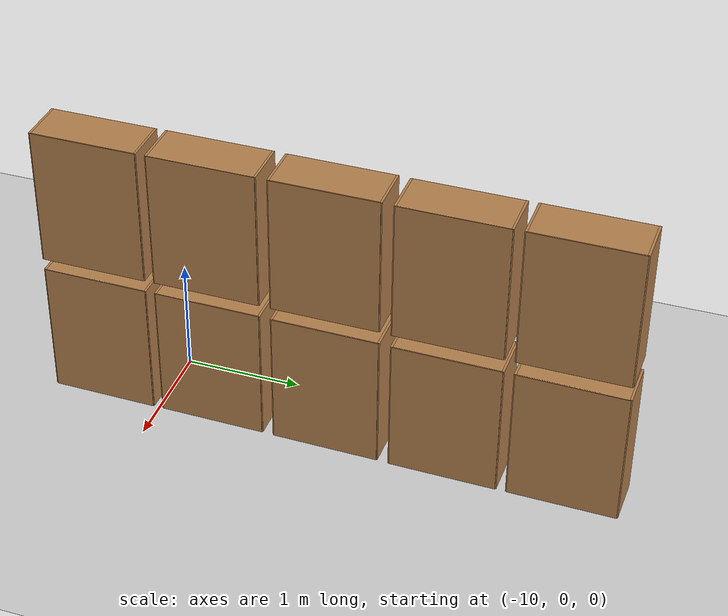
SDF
<sdf version="1.6">
 <world name="default">
  <model name="ground_plane">
   <static>1</static>
   <link name="link">
    <collision name="collision">
     <geometry><plane><normal>0 0 1</normal><size>100 100</size></plane></geometry>
     <surface>
      <contact><collide_bitmask>65535</collide_bitmask></contact>
      <friction><ode><mu>100</mu><mu2>50</mu2></ode></friction>
     </surface>
    </collision>
    <visual name="visual">
     <cast_shadows>0</cast_shadows>
     <geometry><plane><normal>0 0 1</normal><size>100 100</size></plane></geometry>
     <material>
      <script><uri>file://media/materials/scripts/gazebo.material</uri><name>Gazebo/Grey</name></script>
     </material>
    </visual>
   </link>
  </model>
  <model name="bookshelf_13">
   <link name="link">
    <inertial><mass>1</mass></inertial>
    <visual name="visual1">
     <pose>0 0.005 0.6 0 -0 0</pose>
     <geometry><box><size>0.9 0.01 1.2</size></box></geometry>
     <material>
      <script><uri>file://media/materials/scripts/gazebo.material</uri><name>Gazebo/Wood</name></script>
      <shader type="pixel"/>
     </material>
    </visual>
    <visual name="visual2">
     <pose>0.45 -0.195 0.6 0 -0 0</pose>
     <geometry><box><size>0.02 0.4 1.2</size></box></geometry>
     <material>
      <script><uri>file://media/materials/scripts/gazebo.material</uri><name>Gazebo/Wood</name></script>
      <shader type="pixel"/>
     </material>
    </visual>
    <visual name="visual6">
     <pose>0 -0.195 0.43 0 -0 0</pose>
     <geometry><box><size>0.88 0.4 0.02</size></box></geometry>
     <material>
      <script><uri>file://media/materials/scripts/gazebo.material</uri><name>Gazebo/Wood</name></script>
      <shader type="pixel"/>
     </material>
    </visual>
    <visual name="visual5">
     <pose>0 -0.195 1.19 0 -0 0</pose>
     <geometry><box><size>0.88 0.4 0.02</size></box></geometry>
     <material>
      <script><uri>file://media/materials/scripts/gazebo.material</uri><name>Gazebo/Wood</name></script>
      <shader type="pixel"/>
     </material>
    </visual>
    <visual name="visual7">
     <pose>0 -0.195 0.8 0 -0 0</pose>
     <geometry><box><size>0.88 0.4 0.02</size></box></geometry>
     <material>
      <script><uri>file://media/materials/scripts/gazebo.material</uri><name>Gazebo/Wood</name></script>
      <shader type="pixel"/>
     </material>
    </visual>
    <visual name="visual4">
     <pose>0 -0.195 0.03 0 -0 0</pose>
     <geometry><box><size>0.88 0.4 0.06</size></box></geometry>
     <material>
      <script><uri>file://media/materials/scripts/gazebo.material</uri><name>Gazebo/Wood</name></script>
      <shader type="pixel"/>
     </material>
    </visual>
    <visual name="visual3">
     <pose>-0.45 -0.195 0.6 0 -0 0</pose>
     <geometry><box><size>0.02 0.4 1.2</size></box></geometry>
     <material>
      <script><uri>file://media/materials/scripts/gazebo.material</uri><name>Gazebo/Wood</name></script>
      <shader type="pixel"/>
     </material>
    </visual>
    <collision name="right_side">
     <pose>-0.45 -0.195 0.6 0 -0 0</pose>
     <geometry><box><size>0.02 0.4 1.2</size></box></geometry>
     <surface>
      <friction>
       <ode><mu>1</mu><mu2>1</mu2><fdir1>0 0 0</fdir1><slip1>0</slip1><slip2>0</slip2></ode>
       <torsional>
        <coefficient>1</coefficient>
        <patch_radius>0</patch_radius>
        <surface_radius>0</surface_radius>
        <use_patch_radius>1</use_patch_radius>
        <ode><slip>0</slip></ode>
       </torsional>
      </friction>
      <bounce><restitution_coefficient>0</restitution_coefficient><threshold>1e+06</threshold></bounce>
      <contact>
       <collide_without_contact>0</collide_without_contact>
       <collide_without_contact_bitmask>1</collide_without_contact_bitmask>
       <collide_bitmask>1</collide_bitmask>
       <ode>
        <soft_cfm>0</soft_cfm>
        <soft_erp>0.2</soft_erp>
        <kp>1e+13</kp>
        <kd>1</kd>
        <max_vel>0.01</max_vel>
        <min_depth>0</min_depth>
       </ode>
       <bullet>
        <split_impulse>1</split_impulse>
        <split_impulse_penetration_threshold>-0.01</split_impulse_penetration_threshold>
        <soft_cfm>0</soft_cfm>
        <soft_erp>0.2</soft_erp>
        <kp>1e+13</kp>
        <kd>1</kd>
       </bullet>
      </contact>
     </surface>
    </collision>
    <collision name="left_side">
     <pose>0.45 -0.195 0.6 0 -0 0</pose>
     <geometry><box><size>0.02 0.4 1.2</size></box></geometry>
     <surface>
      <friction>
       <ode><mu>1</mu><mu2>1</mu2><fdir1>0 0 0</fdir1><slip1>0</slip1><slip2>0</slip2></ode>
       <torsional>
        <coefficient>1</coefficient>
        <patch_radius>0</patch_radius>
        <surface_radius>0</surface_radius>
        <use_patch_radius>1</use_patch_radius>
        <ode><slip>0</slip></ode>
       </torsional>
      </friction>
      <bounce><restitution_coefficient>0</restitution_coefficient><threshold>1e+06</threshold></bounce>
      <contact>
       <collide_without_contact>0</collide_without_contact>
       <collide_without_contact_bitmask>1</collide_without_contact_bitmask>
       <collide_bitmask>1</collide_bitmask>
       <ode>
        <soft_cfm>0</soft_cfm>
        <soft_erp>0.2</soft_erp>
        <kp>1e+13</kp>
        <kd>1</kd>
        <max_vel>0.01</max_vel>
        <min_depth>0</min_depth>
       </ode>
       <bullet>
        <split_impulse>1</split_impulse>
        <split_impulse_penetration_threshold>-0.01</split_impulse_penetration_threshold>
        <soft_cfm>0</soft_cfm>
        <soft_erp>0.2</soft_erp>
        <kp>1e+13</kp>
        <kd>1</kd>
       </bullet>
      </contact>
     </surface>
    </collision>
    <collision name="top">
     <pose>0 -0.195 1.19 0 -0 0</pose>
     <geometry><box><size>0.88 0.4 0.02</size></box></geometry>
     <surface>
      <friction>
       <ode><mu>1</mu><mu2>1</mu2><fdir1>0 0 0</fdir1><slip1>0</slip1><slip2>0</slip2></ode>
       <torsional>
        <coefficient>1</coefficient>
        <patch_radius>0</patch_radius>
        <surface_radius>0</surface_radius>
        <use_patch_radius>1</use_patch_radius>
        <ode><slip>0</slip></ode>
       </torsional>
      </friction>
      <bounce><restitution_coefficient>0</restitution_coefficient><threshold>1e+06</threshold></bounce>
      <contact>
       <collide_without_contact>0</collide_without_contact>
       <collide_without_contact_bitmask>1</collide_without_contact_bitmask>
       <collide_bitmask>1</collide_bitmask>
       <ode>
        <soft_cfm>0</soft_cfm>
        <soft_erp>0.2</soft_erp>
        <kp>1e+13</kp>
        <kd>1</kd>
        <max_vel>0.01</max_vel>
        <min_depth>0</min_depth>
       </ode>
       <bullet>
        <split_impulse>1</split_impulse>
        <split_impulse_penetration_threshold>-0.01</split_impulse_penetration_threshold>
        <soft_cfm>0</soft_cfm>
        <soft_erp>0.2</soft_erp>
        <kp>1e+13</kp>
        <kd>1</kd>
       </bullet>
      </contact>
     </surface>
    </collision>
    <collision name="back">
     <pose>0 0.005 0.6 0 -0 0</pose>
     <geometry><box><size>0.9 0.01 1.2</size></box></geometry>
     <surface>
      <friction>
       <ode><mu>1</mu><mu2>1</mu2><fdir1>0 0 0</fdir1><slip1>0</slip1><slip2>0</slip2></ode>
       <torsional>
        <coefficient>1</coefficient>
        <patch_radius>0</patch_radius>
        <surface_radius>0</surface_radius>
        <use_patch_radius>1</use_patch_radius>
        <ode><slip>0</slip></ode>
       </torsional>
      </friction>
      <bounce><restitution_coefficient>0</restitution_coefficient><threshold>1e+06</threshold></bounce>
      <contact>
       <collide_without_contact>0</collide_without_contact>
       <collide_without_contact_bitmask>1</collide_without_contact_bitmask>
       <collide_bitmask>1</collide_bitmask>
       <ode>
        <soft_cfm>0</soft_cfm>
        <soft_erp>0.2</soft_erp>
        <kp>1e+13</kp>
        <kd>1</kd>
        <max_vel>0.01</max_vel>
        <min_depth>0</min_depth>
       </ode>
       <bullet>
        <split_impulse>1</split_impulse>
        <split_impulse_penetration_threshold>-0.01</split_impulse_penetration_threshold>
        <soft_cfm>0</soft_cfm>
        <soft_erp>0.2</soft_erp>
        <kp>1e+13</kp>
        <kd>1</kd>
       </bullet>
      </contact>
     </surface>
    </collision>
    <collision name="bottom">
     <pose>0 -0.195 0.03 0 -0 0</pose>
     <geometry><box><size>0.88 0.4 0.06</size></box></geometry>
     <surface>
      <friction>
       <ode><mu>1</mu><mu2>1</mu2><fdir1>0 0 0</fdir1><slip1>0</slip1><slip2>0</slip2></ode>
       <torsional>
        <coefficient>1</coefficient>
        <patch_radius>0</patch_radius>
        <surface_radius>0</surface_radius>
        <use_patch_radius>1</use_patch_radius>
        <ode><slip>0</slip></ode>
       </torsional>
      </friction>
      <bounce><restitution_coefficient>0</restitution_coefficient><threshold>1e+06</threshold></bounce>
      <contact>
       <collide_without_contact>0</collide_without_contact>
       <collide_without_contact_bitmask>1</collide_without_contact_bitmask>
       <collide_bitmask>1</collide_bitmask>
       <ode>
        <soft_cfm>0</soft_cfm>
        <soft_erp>0.2</soft_erp>
        <kp>1e+13</kp>
        <kd>1</kd>
        <max_vel>0.01</max_vel>
        <min_depth>0</min_depth>
       </ode>
       <bullet>
        <split_impulse>1</split_impulse>
        <split_impulse_penetration_threshold>-0.01</split_impulse_penetration_threshold>
        <soft_cfm>0</soft_cfm>
        <soft_erp>0.2</soft_erp>
        <kp>1e+13</kp>
        <kd>1</kd>
       </bullet>
      </contact>
     </surface>
    </collision>
    <collision name="high_shelf">
     <pose>0 -0.195 0.8 0 -0 0</pose>
     <geometry><box><size>0.88 0.4 0.02</size></box></geometry>
     <surface>
      <friction>
       <ode><mu>1</mu><mu2>1</mu2><fdir1>0 0 0</fdir1><slip1>0</slip1><slip2>0</slip2></ode>
       <torsional>
        <coefficient>1</coefficient>
        <patch_radius>0</patch_radius>
        <surface_radius>0</surface_radius>
        <use_patch_radius>1</use_patch_radius>
        <ode><slip>0</slip></ode>
       </torsional>
      </friction>
      <bounce><restitution_coefficient>0</restitution_coefficient><threshold>1e+06</threshold></bounce>
      <contact>
       <collide_without_contact>0</collide_without_contact>
       <collide_without_contact_bitmask>1</collide_without_contact_bitmask>
       <collide_bitmask>1</collide_bitmask>
       <ode>
        <soft_cfm>0</soft_cfm>
        <soft_erp>0.2</soft_erp>
        <kp>1e+13</kp>
        <kd>1</kd>
        <max_vel>0.01</max_vel>
        <min_depth>0</min_depth>
       </ode>
       <bullet>
        <split_impulse>1</split_impulse>
        <split_impulse_penetration_threshold>-0.01</split_impulse_penetration_threshold>
        <soft_cfm>0</soft_cfm>
        <soft_erp>0.2</soft_erp>
        <kp>1e+13</kp>
        <kd>1</kd>
       </bullet>
      </contact>
     </surface>
    </collision>
    <collision name="low_shelf">
     <pose>0 -0.195 0.43 0 -0 0</pose>
     <geometry><box><size>0.88 0.4 0.02</size></box></geometry>
     <surface>
      <friction>
       <ode><mu>1</mu><mu2>1</mu2><fdir1>0 0 0</fdir1><slip1>0</slip1><slip2>0</slip2></ode>
       <torsional>
        <coefficient>1</coefficient>
        <patch_radius>0</patch_radius>
        <surface_radius>0</surface_radius>
        <use_patch_radius>1</use_patch_radius>
        <ode><slip>0</slip></ode>
       </torsional>
      </friction>
      <bounce><restitution_coefficient>0</restitution_coefficient><threshold>1e+06</threshold></bounce>
      <contact>
       <collide_without_contact>0</collide_without_contact>
       <collide_without_contact_bitmask>1</collide_without_contact_bitmask>
       <collide_bitmask>1</collide_bitmask>
       <ode>
        <soft_cfm>0</soft_cfm>
        <soft_erp>0.2</soft_erp>
        <kp>1e+13</kp>
        <kd>1</kd>
        <max_vel>0.01</max_vel>
        <min_depth>0</min_depth>
       </ode>
       <bullet>
        <split_impulse>1</split_impulse>
        <split_impulse_penetration_threshold>-0.01</split_impulse_penetration_threshold>
        <soft_cfm>0</soft_cfm>
        <soft_erp>0.2</soft_erp>
        <kp>1e+13</kp>
        <kd>1</kd>
       </bullet>
      </contact>
     </surface>
    </collision>
   </link>
   <model name="bookshelf">
    <static>1</static>
    <link name="link">
     <inertial><mass>1</mass></inertial>
     <collision name="back">
      <pose>0 0.005 0.6 0 -0 0</pose>
      <geometry><box><size>0.9 0.01 1.2</size></box></geometry>
     </collision>
     <visual name="visual1">
      <pose>0 0.005 0.6 0 -0 0</pose>
      <geometry><box><size>0.9 0.01 1.2</size></box></geometry>
      <material>
       <script><uri>file://media/materials/scripts/gazebo.material</uri><name>Gazebo/Wood</name></script>
      </material>
     </visual>
     <collision name="left_side">
      <pose>0.45 -0.195 0.6 0 -0 0</pose>
      <geometry><box><size>0.02 0.4 1.2</size></box></geometry>
     </collision>
     <visual name="visual2">
      <pose>0.45 -0.195 0.6 0 -0 0</pose>
      <geometry><box><size>0.02 0.4 1.2</size></box></geometry>
      <material>
       <script><uri>file://media/materials/scripts/gazebo.material</uri><name>Gazebo/Wood</name></script>
      </material>
     </visual>
     <collision name="right_side">
      <pose>-0.45 -0.195 0.6 0 -0 0</pose>
      <geometry><box><size>0.02 0.4 1.2</size></box></geometry>
     </collision>
     <visual name="visual3">
      <pose>-0.45 -0.195 0.6 0 -0 0</pose>
      <geometry><box><size>0.02 0.4 1.2</size></box></geometry>
      <material>
       <script><uri>file://media/materials/scripts/gazebo.material</uri><name>Gazebo/Wood</name></script>
      </material>
     </visual>
     <collision name="bottom">
      <pose>0 -0.195 0.03 0 -0 0</pose>
      <geometry><box><size>0.88 0.4 0.06</size></box></geometry>
     </collision>
     <visual name="visual4">
      <pose>0 -0.195 0.03 0 -0 0</pose>
      <geometry><box><size>0.88 0.4 0.06</size></box></geometry>
      <material>
       <script><uri>file://media/materials/scripts/gazebo.material</uri><name>Gazebo/Wood</name></script>
      </material>
     </visual>
     <collision name="top">
      <pose>0 -0.195 1.19 0 -0 0</pose>
      <geometry><box><size>0.88 0.4 0.02</size></box></geometry>
     </collision>
     <visual name="visual5">
      <pose>0 -0.195 1.19 0 -0 0</pose>
      <geometry><box><size>0.88 0.4 0.02</size></box></geometry>
      <material>
       <script><uri>file://media/materials/scripts/gazebo.material</uri><name>Gazebo/Wood</name></script>
      </material>
     </visual>
     <collision name="low_shelf">
      <pose>0 -0.195 0.43 0 -0 0</pose>
      <geometry><box><size>0.88 0.4 0.02</size></box></geometry>
     </collision>
     <visual name="visual6">
      <pose>0 -0.195 0.43 0 -0 0</pose>
      <geometry><box><size>0.88 0.4 0.02</size></box></geometry>
      <material>
       <script><uri>file://media/materials/scripts/gazebo.material</uri><name>Gazebo/Wood</name></script>
      </material>
     </visual>
     <collision name="high_shelf">
      <pose>0 -0.195 0.8 0 -0 0</pose>
      <geometry><box><size>0.88 0.4 0.02</size></box></geometry>
     </collision>
     <visual name="visual7">
      <pose>0 -0.195 0.8 0 -0 0</pose>
      <geometry><box><size>0.88 0.4 0.02</size></box></geometry>
      <material>
       <script><uri>file://media/materials/scripts/gazebo.material</uri><name>Gazebo/Wood</name></script>
      </material>
     </visual>
    </link>
    <pose>0.995227 0.001782 0 0 -0 0</pose>
   </model>
   <model name="bookshelf_0">
    <static>1</static>
    <link name="link">
     <inertial><mass>1</mass></inertial>
     <collision name="back">
      <pose>0 0.005 0.6 0 -0 0</pose>
      <geometry><box><size>0.9 0.01 1.2</size></box></geometry>
     </collision>
     <visual name="visual1">
      <pose>0 0.005 0.6 0 -0 0</pose>
      <geometry><box><size>0.9 0.01 1.2</size></box></geometry>
      <material>
       <script><uri>file://media/materials/scripts/gazebo.material</uri><name>Gazebo/Wood</name></script>
      </material>
     </visual>
     <collision name="left_side">
      <pose>0.45 -0.195 0.6 0 -0 0</pose>
      <geometry><box><size>0.02 0.4 1.2</size></box></geometry>
     </collision>
     <visual name="visual2">
      <pose>0.45 -0.195 0.6 0 -0 0</pose>
      <geometry><box><size>0.02 0.4 1.2</size></box></geometry>
      <material>
       <script><uri>file://media/materials/scripts/gazebo.material</uri><name>Gazebo/Wood</name></script>
      </material>
     </visual>
     <collision name="right_side">
      <pose>-0.45 -0.195 0.6 0 -0 0</pose>
      <geometry><box><size>0.02 0.4 1.2</size></box></geometry>
     </collision>
     <visual name="visual3">
      <pose>-0.45 -0.195 0.6 0 -0 0</pose>
      <geometry><box><size>0.02 0.4 1.2</size></box></geometry>
      <material>
       <script><uri>file://media/materials/scripts/gazebo.material</uri><name>Gazebo/Wood</name></script>
      </material>
     </visual>
     <collision name="bottom">
      <pose>0 -0.195 0.03 0 -0 0</pose>
      <geometry><box><size>0.88 0.4 0.06</size></box></geometry>
     </collision>
     <visual name="visual4">
      <pose>0 -0.195 0.03 0 -0 0</pose>
      <geometry><box><size>0.88 0.4 0.06</size></box></geometry>
      <material>
       <script><uri>file://media/materials/scripts/gazebo.material</uri><name>Gazebo/Wood</name></script>
      </material>
     </visual>
     <collision name="top">
      <pose>0 -0.195 1.19 0 -0 0</pose>
      <geometry><box><size>0.88 0.4 0.02</size></box></geometry>
     </collision>
     <visual name="visual5">
      <pose>0 -0.195 1.19 0 -0 0</pose>
      <geometry><box><size>0.88 0.4 0.02</size></box></geometry>
      <material>
       <script><uri>file://media/materials/scripts/gazebo.material</uri><name>Gazebo/Wood</name></script>
      </material>
     </visual>
     <collision name="low_shelf">
      <pose>0 -0.195 0.43 0 -0 0</pose>
      <geometry><box><size>0.88 0.4 0.02</size></box></geometry>
     </collision>
     <visual name="visual6">
      <pose>0 -0.195 0.43 0 -0 0</pose>
      <geometry><box><size>0.88 0.4 0.02</size></box></geometry>
      <material>
       <script><uri>file://media/materials/scripts/gazebo.material</uri><name>Gazebo/Wood</name></script>
      </material>
     </visual>
     <collision name="high_shelf">
      <pose>0 -0.195 0.8 0 -0 0</pose>
      <geometry><box><size>0.88 0.4 0.02</size></box></geometry>
     </collision>
     <visual name="visual7">
      <pose>0 -0.195 0.8 0 -0 0</pose>
      <geometry><box><size>0.88 0.4 0.02</size></box></geometry>
      <material>
       <script><uri>file://media/materials/scripts/gazebo.material</uri><name>Gazebo/Wood</name></script>
      </material>
     </visual>
    </link>
    <pose>2.00556 -0.004623 0 0 -0 0</pose>
   </model>
   <model name="bookshelf_1">
    <static>1</static>
    <link name="link">
     <inertial><mass>1</mass></inertial>
     <collision name="back">
      <pose>0 0.005 0.6 0 -0 0</pose>
      <geometry><box><size>0.9 0.01 1.2</size></box></geometry>
     </collision>
     <visual name="visual1">
      <pose>0 0.005 0.6 0 -0 0</pose>
      <geometry><box><size>0.9 0.01 1.2</size></box></geometry>
      <material>
       <script><uri>file://media/materials/scripts/gazebo.material</uri><name>Gazebo/Wood</name></script>
      </material>
     </visual>
     <collision name="left_side">
      <pose>0.45 -0.195 0.6 0 -0 0</pose>
      <geometry><box><size>0.02 0.4 1.2</size></box></geometry>
     </collision>
     <visual name="visual2">
      <pose>0.45 -0.195 0.6 0 -0 0</pose>
      <geometry><box><size>0.02 0.4 1.2</size></box></geometry>
      <material>
       <script><uri>file://media/materials/scripts/gazebo.material</uri><name>Gazebo/Wood</name></script>
      </material>
     </visual>
     <collision name="right_side">
      <pose>-0.45 -0.195 0.6 0 -0 0</pose>
      <geometry><box><size>0.02 0.4 1.2</size></box></geometry>
     </collision>
     <visual name="visual3">
      <pose>-0.45 -0.195 0.6 0 -0 0</pose>
      <geometry><box><size>0.02 0.4 1.2</size></box></geometry>
      <material>
       <script><uri>file://media/materials/scripts/gazebo.material</uri><name>Gazebo/Wood</name></script>
      </material>
     </visual>
     <collision name="bottom">
      <pose>0 -0.195 0.03 0 -0 0</pose>
      <geometry><box><size>0.88 0.4 0.06</size></box></geometry>
     </collision>
     <visual name="visual4">
      <pose>0 -0.195 0.03 0 -0 0</pose>
      <geometry><box><size>0.88 0.4 0.06</size></box></geometry>
      <material>
       <script><uri>file://media/materials/scripts/gazebo.material</uri><name>Gazebo/Wood</name></script>
      </material>
     </visual>
     <collision name="top">
      <pose>0 -0.195 1.19 0 -0 0</pose>
      <geometry><box><size>0.88 0.4 0.02</size></box></geometry>
     </collision>
     <visual name="visual5">
      <pose>0 -0.195 1.19 0 -0 0</pose>
      <geometry><box><size>0.88 0.4 0.02</size></box></geometry>
      <material>
       <script><uri>file://media/materials/scripts/gazebo.material</uri><name>Gazebo/Wood</name></script>
      </material>
     </visual>
     <collision name="low_shelf">
      <pose>0 -0.195 0.43 0 -0 0</pose>
      <geometry><box><size>0.88 0.4 0.02</size></box></geometry>
     </collision>
     <visual name="visual6">
      <pose>0 -0.195 0.43 0 -0 0</pose>
      <geometry><box><size>0.88 0.4 0.02</size></box></geometry>
      <material>
       <script><uri>file://media/materials/scripts/gazebo.material</uri><name>Gazebo/Wood</name></script>
      </material>
     </visual>
     <collision name="high_shelf">
      <pose>0 -0.195 0.8 0 -0 0</pose>
      <geometry><box><size>0.88 0.4 0.02</size></box></geometry>
     </collision>
     <visual name="visual7">
      <pose>0 -0.195 0.8 0 -0 0</pose>
      <geometry><box><size>0.88 0.4 0.02</size></box></geometry>
      <material>
       <script><uri>file://media/materials/scripts/gazebo.material</uri><name>Gazebo/Wood</name></script>
      </material>
     </visual>
    </link>
    <pose>3.01465 -0.007637 0 0 -0 0</pose>
   </model>
   <model name="bookshelf_2">
    <static>1</static>
    <link name="link">
     <inertial><mass>1</mass></inertial>
     <collision name="back">
      <pose>0 0.005 0.6 0 -0 0</pose>
      <geometry><box><size>0.9 0.01 1.2</size></box></geometry>
     </collision>
     <visual name="visual1">
      <pose>0 0.005 0.6 0 -0 0</pose>
      <geometry><box><size>0.9 0.01 1.2</size></box></geometry>
      <material>
       <script><uri>file://media/materials/scripts/gazebo.material</uri><name>Gazebo/Wood</name></script>
      </material>
     </visual>
     <collision name="left_side">
      <pose>0.45 -0.195 0.6 0 -0 0</pose>
      <geometry><box><size>0.02 0.4 1.2</size></box></geometry>
     </collision>
     <visual name="visual2">
      <pose>0.45 -0.195 0.6 0 -0 0</pose>
      <geometry><box><size>0.02 0.4 1.2</size></box></geometry>
      <material>
       <script><uri>file://media/materials/scripts/gazebo.material</uri><name>Gazebo/Wood</name></script>
      </material>
     </visual>
     <collision name="right_side">
      <pose>-0.45 -0.195 0.6 0 -0 0</pose>
      <geometry><box><size>0.02 0.4 1.2</size></box></geometry>
     </collision>
     <visual name="visual3">
      <pose>-0.45 -0.195 0.6 0 -0 0</pose>
      <geometry><box><size>0.02 0.4 1.2</size></box></geometry>
      <material>
       <script><uri>file://media/materials/scripts/gazebo.material</uri><name>Gazebo/Wood</name></script>
      </material>
     </visual>
     <collision name="bottom">
      <pose>0 -0.195 0.03 0 -0 0</pose>
      <geometry><box><size>0.88 0.4 0.06</size></box></geometry>
     </collision>
     <visual name="visual4">
      <pose>0 -0.195 0.03 0 -0 0</pose>
      <geometry><box><size>0.88 0.4 0.06</size></box></geometry>
      <material>
       <script><uri>file://media/materials/scripts/gazebo.material</uri><name>Gazebo/Wood</name></script>
      </material>
     </visual>
     <collision name="top">
      <pose>0 -0.195 1.19 0 -0 0</pose>
      <geometry><box><size>0.88 0.4 0.02</size></box></geometry>
     </collision>
     <visual name="visual5">
      <pose>0 -0.195 1.19 0 -0 0</pose>
      <geometry><box><size>0.88 0.4 0.02</size></box></geometry>
      <material>
       <script><uri>file://media/materials/scripts/gazebo.material</uri><name>Gazebo/Wood</name></script>
      </material>
     </visual>
     <collision name="low_shelf">
      <pose>0 -0.195 0.43 0 -0 0</pose>
      <geometry><box><size>0.88 0.4 0.02</size></box></geometry>
     </collision>
     <visual name="visual6">
      <pose>0 -0.195 0.43 0 -0 0</pose>
      <geometry><box><size>0.88 0.4 0.02</size></box></geometry>
      <material>
       <script><uri>file://media/materials/scripts/gazebo.material</uri><name>Gazebo/Wood</name></script>
      </material>
     </visual>
     <collision name="high_shelf">
      <pose>0 -0.195 0.8 0 -0 0</pose>
      <geometry><box><size>0.88 0.4 0.02</size></box></geometry>
     </collision>
     <visual name="visual7">
      <pose>0 -0.195 0.8 0 -0 0</pose>
      <geometry><box><size>0.88 0.4 0.02</size></box></geometry>
      <material>
       <script><uri>file://media/materials/scripts/gazebo.material</uri><name>Gazebo/Wood</name></script>
      </material>
     </visual>
    </link>
    <pose>4.0064 -0.00407 0 0 -0 0</pose>
   </model>
   <static>1</static>
   <pose>-9.27686 3.49749 0 0 0 -1.58832</pose>
  </model>
  <model name="bookshelf_13_0">
   <link name="link">
    <inertial><mass>1</mass></inertial>
    <visual name="visual1">
     <pose>0 0.005 0.6 0 -0 0</pose>
     <geometry><box><size>0.9 0.01 1.2</size></box></geometry>
     <material>
      <script><uri>file://media/materials/scripts/gazebo.material</uri><name>Gazebo/Wood</name></script>
      <shader type="pixel"/>
     </material>
    </visual>
    <visual name="visual2">
     <pose>0.45 -0.195 0.6 0 -0 0</pose>
     <geometry><box><size>0.02 0.4 1.2</size></box></geometry>
     <material>
      <script><uri>file://media/materials/scripts/gazebo.material</uri><name>Gazebo/Wood</name></script>
      <shader type="pixel"/>
     </material>
    </visual>
    <visual name="visual6">
     <pose>0 -0.195 0.43 0 -0 0</pose>
     <geometry><box><size>0.88 0.4 0.02</size></box></geometry>
     <material>
      <script><uri>file://media/materials/scripts/gazebo.material</uri><name>Gazebo/Wood</name></script>
      <shader type="pixel"/>
     </material>
    </visual>
    <visual name="visual5">
     <pose>0 -0.195 1.19 0 -0 0</pose>
     <geometry><box><size>0.88 0.4 0.02</size></box></geometry>
     <material>
      <script><uri>file://media/materials/scripts/gazebo.material</uri><name>Gazebo/Wood</name></script>
      <shader type="pixel"/>
     </material>
    </visual>
    <visual name="visual7">
     <pose>0 -0.195 0.8 0 -0 0</pose>
     <geometry><box><size>0.88 0.4 0.02</size></box></geometry>
     <material>
      <script><uri>file://media/materials/scripts/gazebo.material</uri><name>Gazebo/Wood</name></script>
      <shader type="pixel"/>
     </material>
    </visual>
    <visual name="visual4">
     <pose>0 -0.195 0.03 0 -0 0</pose>
     <geometry><box><size>0.88 0.4 0.06</size></box></geometry>
     <material>
      <script><uri>file://media/materials/scripts/gazebo.material</uri><name>Gazebo/Wood</name></script>
      <shader type="pixel"/>
     </material>
    </visual>
    <visual name="visual3">
     <pose>-0.45 -0.195 0.6 0 -0 0</pose>
     <geometry><box><size>0.02 0.4 1.2</size></box></geometry>
     <material>
      <script><uri>file://media/materials/scripts/gazebo.material</uri><name>Gazebo/Wood</name></script>
      <shader type="pixel"/>
     </material>
    </visual>
    <collision name="right_side">
     <pose>-0.45 -0.195 0.6 0 -0 0</pose>
     <geometry><box><size>0.02 0.4 1.2</size></box></geometry>
     <surface>
      <friction>
       <ode><mu>1</mu><mu2>1</mu2><fdir1>0 0 0</fdir1><slip1>0</slip1><slip2>0</slip2></ode>
       <torsional>
        <coefficient>1</coefficient>
        <patch_radius>0</patch_radius>
        <surface_radius>0</surface_radius>
        <use_patch_radius>1</use_patch_radius>
        <ode><slip>0</slip></ode>
       </torsional>
      </friction>
      <bounce><restitution_coefficient>0</restitution_coefficient><threshold>1e+06</threshold></bounce>
      <contact>
       <collide_without_contact>0</collide_without_contact>
       <collide_without_contact_bitmask>1</collide_without_contact_bitmask>
       <collide_bitmask>1</collide_bitmask>
       <ode>
        <soft_cfm>0</soft_cfm>
        <soft_erp>0.2</soft_erp>
        <kp>1e+13</kp>
        <kd>1</kd>
        <max_vel>0.01</max_vel>
        <min_depth>0</min_depth>
       </ode>
       <bullet>
        <split_impulse>1</split_impulse>
        <split_impulse_penetration_threshold>-0.01</split_impulse_penetration_threshold>
        <soft_cfm>0</soft_cfm>
        <soft_erp>0.2</soft_erp>
        <kp>1e+13</kp>
        <kd>1</kd>
       </bullet>
      </contact>
     </surface>
    </collision>
    <collision name="left_side">
     <pose>0.45 -0.195 0.6 0 -0 0</pose>
     <geometry><box><size>0.02 0.4 1.2</size></box></geometry>
     <surface>
      <friction>
       <ode><mu>1</mu><mu2>1</mu2><fdir1>0 0 0</fdir1><slip1>0</slip1><slip2>0</slip2></ode>
       <torsional>
        <coefficient>1</coefficient>
        <patch_radius>0</patch_radius>
        <surface_radius>0</surface_radius>
        <use_patch_radius>1</use_patch_radius>
        <ode><slip>0</slip></ode>
       </torsional>
      </friction>
      <bounce><restitution_coefficient>0</restitution_coefficient><threshold>1e+06</threshold></bounce>
      <contact>
       <collide_without_contact>0</collide_without_contact>
       <collide_without_contact_bitmask>1</collide_without_contact_bitmask>
       <collide_bitmask>1</collide_bitmask>
       <ode>
        <soft_cfm>0</soft_cfm>
        <soft_erp>0.2</soft_erp>
        <kp>1e+13</kp>
        <kd>1</kd>
        <max_vel>0.01</max_vel>
        <min_depth>0</min_depth>
       </ode>
       <bullet>
        <split_impulse>1</split_impulse>
        <split_impulse_penetration_threshold>-0.01</split_impulse_penetration_threshold>
        <soft_cfm>0</soft_cfm>
        <soft_erp>0.2</soft_erp>
        <kp>1e+13</kp>
        <kd>1</kd>
       </bullet>
      </contact>
     </surface>
    </collision>
    <collision name="top">
     <pose>0 -0.195 1.19 0 -0 0</pose>
     <geometry><box><size>0.88 0.4 0.02</size></box></geometry>
     <surface>
      <friction>
       <ode><mu>1</mu><mu2>1</mu2><fdir1>0 0 0</fdir1><slip1>0</slip1><slip2>0</slip2></ode>
       <torsional>
        <coefficient>1</coefficient>
        <patch_radius>0</patch_radius>
        <surface_radius>0</surface_radius>
        <use_patch_radius>1</use_patch_radius>
        <ode><slip>0</slip></ode>
       </torsional>
      </friction>
      <bounce><restitution_coefficient>0</restitution_coefficient><threshold>1e+06</threshold></bounce>
      <contact>
       <collide_without_contact>0</collide_without_contact>
       <collide_without_contact_bitmask>1</collide_without_contact_bitmask>
       <collide_bitmask>1</collide_bitmask>
       <ode>
        <soft_cfm>0</soft_cfm>
        <soft_erp>0.2</soft_erp>
        <kp>1e+13</kp>
        <kd>1</kd>
        <max_vel>0.01</max_vel>
        <min_depth>0</min_depth>
       </ode>
       <bullet>
        <split_impulse>1</split_impulse>
        <split_impulse_penetration_threshold>-0.01</split_impulse_penetration_threshold>
        <soft_cfm>0</soft_cfm>
        <soft_erp>0.2</soft_erp>
        <kp>1e+13</kp>
        <kd>1</kd>
       </bullet>
      </contact>
     </surface>
    </collision>
    <collision name="back">
     <pose>0 0.005 0.6 0 -0 0</pose>
     <geometry><box><size>0.9 0.01 1.2</size></box></geometry>
     <surface>
      <friction>
       <ode><mu>1</mu><mu2>1</mu2><fdir1>0 0 0</fdir1><slip1>0</slip1><slip2>0</slip2></ode>
       <torsional>
        <coefficient>1</coefficient>
        <patch_radius>0</patch_radius>
        <surface_radius>0</surface_radius>
        <use_patch_radius>1</use_patch_radius>
        <ode><slip>0</slip></ode>
       </torsional>
      </friction>
      <bounce><restitution_coefficient>0</restitution_coefficient><threshold>1e+06</threshold></bounce>
      <contact>
       <collide_without_contact>0</collide_without_contact>
       <collide_without_contact_bitmask>1</collide_without_contact_bitmask>
       <collide_bitmask>1</collide_bitmask>
       <ode>
        <soft_cfm>0</soft_cfm>
        <soft_erp>0.2</soft_erp>
        <kp>1e+13</kp>
        <kd>1</kd>
        <max_vel>0.01</max_vel>
        <min_depth>0</min_depth>
       </ode>
       <bullet>
        <split_impulse>1</split_impulse>
        <split_impulse_penetration_threshold>-0.01</split_impulse_penetration_threshold>
        <soft_cfm>0</soft_cfm>
        <soft_erp>0.2</soft_erp>
        <kp>1e+13</kp>
        <kd>1</kd>
       </bullet>
      </contact>
     </surface>
    </collision>
    <collision name="bottom">
     <pose>0 -0.195 0.03 0 -0 0</pose>
     <geometry><box><size>0.88 0.4 0.06</size></box></geometry>
     <surface>
      <friction>
       <ode><mu>1</mu><mu2>1</mu2><fdir1>0 0 0</fdir1><slip1>0</slip1><slip2>0</slip2></ode>
       <torsional>
        <coefficient>1</coefficient>
        <patch_radius>0</patch_radius>
        <surface_radius>0</surface_radius>
        <use_patch_radius>1</use_patch_radius>
        <ode><slip>0</slip></ode>
       </torsional>
      </friction>
      <bounce><restitution_coefficient>0</restitution_coefficient><threshold>1e+06</threshold></bounce>
      <contact>
       <collide_without_contact>0</collide_without_contact>
       <collide_without_contact_bitmask>1</collide_without_contact_bitmask>
       <collide_bitmask>1</collide_bitmask>
       <ode>
        <soft_cfm>0</soft_cfm>
        <soft_erp>0.2</soft_erp>
        <kp>1e+13</kp>
        <kd>1</kd>
        <max_vel>0.01</max_vel>
        <min_depth>0</min_depth>
       </ode>
       <bullet>
        <split_impulse>1</split_impulse>
        <split_impulse_penetration_threshold>-0.01</split_impulse_penetration_threshold>
        <soft_cfm>0</soft_cfm>
        <soft_erp>0.2</soft_erp>
        <kp>1e+13</kp>
        <kd>1</kd>
       </bullet>
      </contact>
     </surface>
    </collision>
    <collision name="high_shelf">
     <pose>0 -0.195 0.8 0 -0 0</pose>
     <geometry><box><size>0.88 0.4 0.02</size></box></geometry>
     <surface>
      <friction>
       <ode><mu>1</mu><mu2>1</mu2><fdir1>0 0 0</fdir1><slip1>0</slip1><slip2>0</slip2></ode>
       <torsional>
        <coefficient>1</coefficient>
        <patch_radius>0</patch_radius>
        <surface_radius>0</surface_radius>
        <use_patch_radius>1</use_patch_radius>
        <ode><slip>0</slip></ode>
       </torsional>
      </friction>
      <bounce><restitution_coefficient>0</restitution_coefficient><threshold>1e+06</threshold></bounce>
      <contact>
       <collide_without_contact>0</collide_without_contact>
       <collide_without_contact_bitmask>1</collide_without_contact_bitmask>
       <collide_bitmask>1</collide_bitmask>
       <ode>
        <soft_cfm>0</soft_cfm>
        <soft_erp>0.2</soft_erp>
        <kp>1e+13</kp>
        <kd>1</kd>
        <max_vel>0.01</max_vel>
        <min_depth>0</min_depth>
       </ode>
       <bullet>
        <split_impulse>1</split_impulse>
        <split_impulse_penetration_threshold>-0.01</split_impulse_penetration_threshold>
        <soft_cfm>0</soft_cfm>
        <soft_erp>0.2</soft_erp>
        <kp>1e+13</kp>
        <kd>1</kd>
       </bullet>
      </contact>
     </surface>
    </collision>
    <collision name="low_shelf">
     <pose>0 -0.195 0.43 0 -0 0</pose>
     <geometry><box><size>0.88 0.4 0.02</size></box></geometry>
     <surface>
      <friction>
       <ode><mu>1</mu><mu2>1</mu2><fdir1>0 0 0</fdir1><slip1>0</slip1><slip2>0</slip2></ode>
       <torsional>
        <coefficient>1</coefficient>
        <patch_radius>0</patch_radius>
        <surface_radius>0</surface_radius>
        <use_patch_radius>1</use_patch_radius>
        <ode><slip>0</slip></ode>
       </torsional>
      </friction>
      <bounce><restitution_coefficient>0</restitution_coefficient><threshold>1e+06</threshold></bounce>
      <contact>
       <collide_without_contact>0</collide_without_contact>
       <collide_without_contact_bitmask>1</collide_without_contact_bitmask>
       <collide_bitmask>1</collide_bitmask>
       <ode>
        <soft_cfm>0</soft_cfm>
        <soft_erp>0.2</soft_erp>
        <kp>1e+13</kp>
        <kd>1</kd>
        <max_vel>0.01</max_vel>
        <min_depth>0</min_depth>
       </ode>
       <bullet>
        <split_impulse>1</split_impulse>
        <split_impulse_penetration_threshold>-0.01</split_impulse_penetration_threshold>
        <soft_cfm>0</soft_cfm>
        <soft_erp>0.2</soft_erp>
        <kp>1e+13</kp>
        <kd>1</kd>
       </bullet>
      </contact>
     </surface>
    </collision>
   </link>
   <model name="bookshelf">
    <static>1</static>
    <link name="link">
     <inertial><mass>1</mass></inertial>
     <collision name="back">
      <pose>0 0.005 0.6 0 -0 0</pose>
      <geometry><box><size>0.9 0.01 1.2</size></box></geometry>
     </collision>
     <visual name="visual1">
      <pose>0 0.005 0.6 0 -0 0</pose>
      <geometry><box><size>0.9 0.01 1.2</size></box></geometry>
      <material>
       <script><uri>file://media/materials/scripts/gazebo.material</uri><name>Gazebo/Wood</name></script>
      </material>
     </visual>
     <collision name="left_side">
      <pose>0.45 -0.195 0.6 0 -0 0</pose>
      <geometry><box><size>0.02 0.4 1.2</size></box></geometry>
     </collision>
     <visual name="visual2">
      <pose>0.45 -0.195 0.6 0 -0 0</pose>
      <geometry><box><size>0.02 0.4 1.2</size></box></geometry>
      <material>
       <script><uri>file://media/materials/scripts/gazebo.material</uri><name>Gazebo/Wood</name></script>
      </material>
     </visual>
     <collision name="right_side">
      <pose>-0.45 -0.195 0.6 0 -0 0</pose>
      <geometry><box><size>0.02 0.4 1.2</size></box></geometry>
     </collision>
     <visual name="visual3">
      <pose>-0.45 -0.195 0.6 0 -0 0</pose>
      <geometry><box><size>0.02 0.4 1.2</size></box></geometry>
      <material>
       <script><uri>file://media/materials/scripts/gazebo.material</uri><name>Gazebo/Wood</name></script>
      </material>
     </visual>
     <collision name="bottom">
      <pose>0 -0.195 0.03 0 -0 0</pose>
      <geometry><box><size>0.88 0.4 0.06</size></box></geometry>
     </collision>
     <visual name="visual4">
      <pose>0 -0.195 0.03 0 -0 0</pose>
      <geometry><box><size>0.88 0.4 0.06</size></box></geometry>
      <material>
       <script><uri>file://media/materials/scripts/gazebo.material</uri><name>Gazebo/Wood</name></script>
      </material>
     </visual>
     <collision name="top">
      <pose>0 -0.195 1.19 0 -0 0</pose>
      <geometry><box><size>0.88 0.4 0.02</size></box></geometry>
     </collision>
     <visual name="visual5">
      <pose>0 -0.195 1.19 0 -0 0</pose>
      <geometry><box><size>0.88 0.4 0.02</size></box></geometry>
      <material>
       <script><uri>file://media/materials/scripts/gazebo.material</uri><name>Gazebo/Wood</name></script>
      </material>
     </visual>
     <collision name="low_shelf">
      <pose>0 -0.195 0.43 0 -0 0</pose>
      <geometry><box><size>0.88 0.4 0.02</size></box></geometry>
     </collision>
     <visual name="visual6">
      <pose>0 -0.195 0.43 0 -0 0</pose>
      <geometry><box><size>0.88 0.4 0.02</size></box></geometry>
      <material>
       <script><uri>file://media/materials/scripts/gazebo.material</uri><name>Gazebo/Wood</name></script>
      </material>
     </visual>
     <collision name="high_shelf">
      <pose>0 -0.195 0.8 0 -0 0</pose>
      <geometry><box><size>0.88 0.4 0.02</size></box></geometry>
     </collision>
     <visual name="visual7">
      <pose>0 -0.195 0.8 0 -0 0</pose>
      <geometry><box><size>0.88 0.4 0.02</size></box></geometry>
      <material>
       <script><uri>file://media/materials/scripts/gazebo.material</uri><name>Gazebo/Wood</name></script>
      </material>
     </visual>
    </link>
    <pose>0.995227 0.001782 0 0 -0 0</pose>
   </model>
   <model name="bookshelf_0">
    <static>1</static>
    <link name="link">
     <inertial><mass>1</mass></inertial>
     <collision name="back">
      <pose>0 0.005 0.6 0 -0 0</pose>
      <geometry><box><size>0.9 0.01 1.2</size></box></geometry>
     </collision>
     <visual name="visual1">
      <pose>0 0.005 0.6 0 -0 0</pose>
      <geometry><box><size>0.9 0.01 1.2</size></box></geometry>
      <material>
       <script><uri>file://media/materials/scripts/gazebo.material</uri><name>Gazebo/Wood</name></script>
      </material>
     </visual>
     <collision name="left_side">
      <pose>0.45 -0.195 0.6 0 -0 0</pose>
      <geometry><box><size>0.02 0.4 1.2</size></box></geometry>
     </collision>
     <visual name="visual2">
      <pose>0.45 -0.195 0.6 0 -0 0</pose>
      <geometry><box><size>0.02 0.4 1.2</size></box></geometry>
      <material>
       <script><uri>file://media/materials/scripts/gazebo.material</uri><name>Gazebo/Wood</name></script>
      </material>
     </visual>
     <collision name="right_side">
      <pose>-0.45 -0.195 0.6 0 -0 0</pose>
      <geometry><box><size>0.02 0.4 1.2</size></box></geometry>
     </collision>
     <visual name="visual3">
      <pose>-0.45 -0.195 0.6 0 -0 0</pose>
      <geometry><box><size>0.02 0.4 1.2</size></box></geometry>
      <material>
       <script><uri>file://media/materials/scripts/gazebo.material</uri><name>Gazebo/Wood</name></script>
      </material>
     </visual>
     <collision name="bottom">
      <pose>0 -0.195 0.03 0 -0 0</pose>
      <geometry><box><size>0.88 0.4 0.06</size></box></geometry>
     </collision>
     <visual name="visual4">
      <pose>0 -0.195 0.03 0 -0 0</pose>
      <geometry><box><size>0.88 0.4 0.06</size></box></geometry>
      <material>
       <script><uri>file://media/materials/scripts/gazebo.material</uri><name>Gazebo/Wood</name></script>
      </material>
     </visual>
     <collision name="top">
      <pose>0 -0.195 1.19 0 -0 0</pose>
      <geometry><box><size>0.88 0.4 0.02</size></box></geometry>
     </collision>
     <visual name="visual5">
      <pose>0 -0.195 1.19 0 -0 0</pose>
      <geometry><box><size>0.88 0.4 0.02</size></box></geometry>
      <material>
       <script><uri>file://media/materials/scripts/gazebo.material</uri><name>Gazebo/Wood</name></script>
      </material>
     </visual>
     <collision name="low_shelf">
      <pose>0 -0.195 0.43 0 -0 0</pose>
      <geometry><box><size>0.88 0.4 0.02</size></box></geometry>
     </collision>
     <visual name="visual6">
      <pose>0 -0.195 0.43 0 -0 0</pose>
      <geometry><box><size>0.88 0.4 0.02</size></box></geometry>
      <material>
       <script><uri>file://media/materials/scripts/gazebo.material</uri><name>Gazebo/Wood</name></script>
      </material>
     </visual>
     <collision name="high_shelf">
      <pose>0 -0.195 0.8 0 -0 0</pose>
      <geometry><box><size>0.88 0.4 0.02</size></box></geometry>
     </collision>
     <visual name="visual7">
      <pose>0 -0.195 0.8 0 -0 0</pose>
      <geometry><box><size>0.88 0.4 0.02</size></box></geometry>
      <material>
       <script><uri>file://media/materials/scripts/gazebo.material</uri><name>Gazebo/Wood</name></script>
      </material>
     </visual>
    </link>
    <pose>2.00556 -0.004623 0 0 -0 0</pose>
   </model>
   <model name="bookshelf_1">
    <static>1</static>
    <link name="link">
     <inertial><mass>1</mass></inertial>
     <collision name="back">
      <pose>0 0.005 0.6 0 -0 0</pose>
      <geometry><box><size>0.9 0.01 1.2</size></box></geometry>
     </collision>
     <visual name="visual1">
      <pose>0 0.005 0.6 0 -0 0</pose>
      <geometry><box><size>0.9 0.01 1.2</size></box></geometry>
      <material>
       <script><uri>file://media/materials/scripts/gazebo.material</uri><name>Gazebo/Wood</name></script>
      </material>
     </visual>
     <collision name="left_side">
      <pose>0.45 -0.195 0.6 0 -0 0</pose>
      <geometry><box><size>0.02 0.4 1.2</size></box></geometry>
     </collision>
     <visual name="visual2">
      <pose>0.45 -0.195 0.6 0 -0 0</pose>
      <geometry><box><size>0.02 0.4 1.2</size></box></geometry>
      <material>
       <script><uri>file://media/materials/scripts/gazebo.material</uri><name>Gazebo/Wood</name></script>
      </material>
     </visual>
     <collision name="right_side">
      <pose>-0.45 -0.195 0.6 0 -0 0</pose>
      <geometry><box><size>0.02 0.4 1.2</size></box></geometry>
     </collision>
     <visual name="visual3">
      <pose>-0.45 -0.195 0.6 0 -0 0</pose>
      <geometry><box><size>0.02 0.4 1.2</size></box></geometry>
      <material>
       <script><uri>file://media/materials/scripts/gazebo.material</uri><name>Gazebo/Wood</name></script>
      </material>
     </visual>
     <collision name="bottom">
      <pose>0 -0.195 0.03 0 -0 0</pose>
      <geometry><box><size>0.88 0.4 0.06</size></box></geometry>
     </collision>
     <visual name="visual4">
      <pose>0 -0.195 0.03 0 -0 0</pose>
      <geometry><box><size>0.88 0.4 0.06</size></box></geometry>
      <material>
       <script><uri>file://media/materials/scripts/gazebo.material</uri><name>Gazebo/Wood</name></script>
      </material>
     </visual>
     <collision name="top">
      <pose>0 -0.195 1.19 0 -0 0</pose>
      <geometry><box><size>0.88 0.4 0.02</size></box></geometry>
     </collision>
     <visual name="visual5">
      <pose>0 -0.195 1.19 0 -0 0</pose>
      <geometry><box><size>0.88 0.4 0.02</size></box></geometry>
      <material>
       <script><uri>file://media/materials/scripts/gazebo.material</uri><name>Gazebo/Wood</name></script>
      </material>
     </visual>
     <collision name="low_shelf">
      <pose>0 -0.195 0.43 0 -0 0</pose>
      <geometry><box><size>0.88 0.4 0.02</size></box></geometry>
     </collision>
     <visual name="visual6">
      <pose>0 -0.195 0.43 0 -0 0</pose>
      <geometry><box><size>0.88 0.4 0.02</size></box></geometry>
      <material>
       <script><uri>file://media/materials/scripts/gazebo.material</uri><name>Gazebo/Wood</name></script>
      </material>
     </visual>
     <collision name="high_shelf">
      <pose>0 -0.195 0.8 0 -0 0</pose>
      <geometry><box><size>0.88 0.4 0.02</size></box></geometry>
     </collision>
     <visual name="visual7">
      <pose>0 -0.195 0.8 0 -0 0</pose>
      <geometry><box><size>0.88 0.4 0.02</size></box></geometry>
      <material>
       <script><uri>file://media/materials/scripts/gazebo.material</uri><name>Gazebo/Wood</name></script>
      </material>
     </visual>
    </link>
    <pose>3.01465 -0.007637 0 0 -0 0</pose>
   </model>
   <model name="bookshelf_2">
    <static>1</static>
    <link name="link">
     <inertial><mass>1</mass></inertial>
     <collision name="back">
      <pose>0 0.005 0.6 0 -0 0</pose>
      <geometry><box><size>0.9 0.01 1.2</size></box></geometry>
     </collision>
     <visual name="visual1">
      <pose>0 0.005 0.6 0 -0 0</pose>
      <geometry><box><size>0.9 0.01 1.2</size></box></geometry>
      <material>
       <script><uri>file://media/materials/scripts/gazebo.material</uri><name>Gazebo/Wood</name></script>
      </material>
     </visual>
     <collision name="left_side">
      <pose>0.45 -0.195 0.6 0 -0 0</pose>
      <geometry><box><size>0.02 0.4 1.2</size></box></geometry>
     </collision>
     <visual name="visual2">
      <pose>0.45 -0.195 0.6 0 -0 0</pose>
      <geometry><box><size>0.02 0.4 1.2</size></box></geometry>
      <material>
       <script><uri>file://media/materials/scripts/gazebo.material</uri><name>Gazebo/Wood</name></script>
      </material>
     </visual>
     <collision name="right_side">
      <pose>-0.45 -0.195 0.6 0 -0 0</pose>
      <geometry><box><size>0.02 0.4 1.2</size></box></geometry>
     </collision>
     <visual name="visual3">
      <pose>-0.45 -0.195 0.6 0 -0 0</pose>
      <geometry><box><size>0.02 0.4 1.2</size></box></geometry>
      <material>
       <script><uri>file://media/materials/scripts/gazebo.material</uri><name>Gazebo/Wood</name></script>
      </material>
     </visual>
     <collision name="bottom">
      <pose>0 -0.195 0.03 0 -0 0</pose>
      <geometry><box><size>0.88 0.4 0.06</size></box></geometry>
     </collision>
     <visual name="visual4">
      <pose>0 -0.195 0.03 0 -0 0</pose>
      <geometry><box><size>0.88 0.4 0.06</size></box></geometry>
      <material>
       <script><uri>file://media/materials/scripts/gazebo.material</uri><name>Gazebo/Wood</name></script>
      </material>
     </visual>
     <collision name="top">
      <pose>0 -0.195 1.19 0 -0 0</pose>
      <geometry><box><size>0.88 0.4 0.02</size></box></geometry>
     </collision>
     <visual name="visual5">
      <pose>0 -0.195 1.19 0 -0 0</pose>
      <geometry><box><size>0.88 0.4 0.02</size></box></geometry>
      <material>
       <script><uri>file://media/materials/scripts/gazebo.material</uri><name>Gazebo/Wood</name></script>
      </material>
     </visual>
     <collision name="low_shelf">
      <pose>0 -0.195 0.43 0 -0 0</pose>
      <geometry><box><size>0.88 0.4 0.02</size></box></geometry>
     </collision>
     <visual name="visual6">
      <pose>0 -0.195 0.43 0 -0 0</pose>
      <geometry><box><size>0.88 0.4 0.02</size></box></geometry>
      <material>
       <script><uri>file://media/materials/scripts/gazebo.material</uri><name>Gazebo/Wood</name></script>
      </material>
     </visual>
     <collision name="high_shelf">
      <pose>0 -0.195 0.8 0 -0 0</pose>
      <geometry><box><size>0.88 0.4 0.02</size></box></geometry>
     </collision>
     <visual name="visual7">
      <pose>0 -0.195 0.8 0 -0 0</pose>
      <geometry><box><size>0.88 0.4 0.02</size></box></geometry>
      <material>
       <script><uri>file://media/materials/scripts/gazebo.material</uri><name>Gazebo/Wood</name></script>
      </material>
     </visual>
    </link>
    <pose>4.0064 -0.00407 0 0 -0 0</pose>
   </model>
   <static>1</static>
   <pose>-9.3108 3.49016 1.29558 0 0 -1.58267</pose>
  </model>
 </world>
</sdf>
